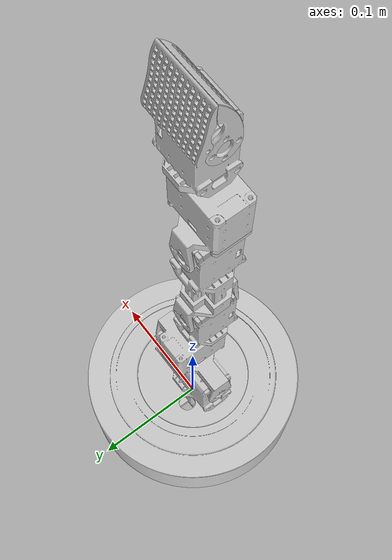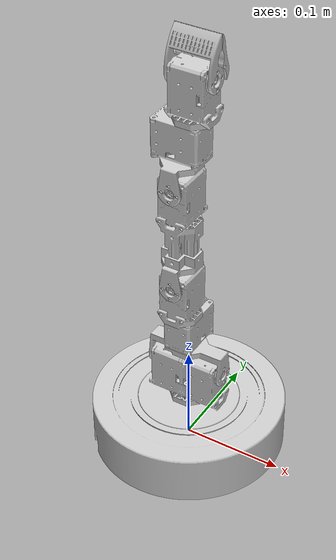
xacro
<?xml version="1.0" ?>
<robot name="clsrobo_90457" xmlns:xacro="http://www.ros.org/wiki/xacro">

    <xacro:include filename="$(find clsrobo_90457_description)/urdf/materials.xacro" />
    <xacro:include filename="$(find clsrobo_90457_description)/urdf/URDF.trans" />
    <xacro:include filename="$(find clsrobo_90457_description)/urdf/URDF.gazebo" />

    <!-->Link Tags Go Here<-->

<link name="0_link">
        <inertial>
            <origin rpy="0 0 0" xyz="0.00003821186809 -0.00030983086283 0.01875604321375"/>
            <mass value="2.07110000000000"/>
            <inertia ixx="3.64188928305714" ixy="0.00000514769757" ixz="0.00000085409818" iyy="3.64187376134656" iyz="0.00000286492593" izz="0.01059796903767"/>
        </inertial>
        <visual>
            <origin rpy="0 0 0" xyz="0 0 0"/>
            <geometry>
                <mesh filename="package://clsrobo_90457_description/meshes/0_link.stl" scale="0.001 0.001 0.001"/>
            </geometry>
            <material name="silver"/>
        </visual>
        <collision>
            <origin rpy="0 0 0" xyz="0 0 0"/>
            <geometry>
                <mesh filename="package://clsrobo_90457_description/meshes/0_link.stl" scale="0.001 0.001 0.001"/>
            </geometry>
        </collision>
    </link>

<link name="1_link">
        <inertial>
            <origin rpy="0 0 0" xyz="0.00012843477802 -0.00014275664176 0.02077775078681"/>
            <mass value="0.22750000000000"/>
            <inertia ixx="0.00019717203900" ixy="-0.00000059205455" ixz="0.00000047245861" iyy="0.00024035701003" iyz="-0.00000052463206" izz="0.00022140776924"/>
        </inertial>
        <visual>
            <origin rpy="0 0 0" xyz="0 0 0"/>
            <geometry>
                <mesh filename="package://clsrobo_90457_description/meshes/1_link.stl" scale="0.001 0.001 0.001"/>
            </geometry>
            <material name="silver"/>
        </visual>
        <collision>
            <origin rpy="0 0 0" xyz="0 0 0"/>
            <geometry>
                <mesh filename="package://clsrobo_90457_description/meshes/1_link.stl" scale="0.001 0.001 0.001"/>
            </geometry>
        </collision>
    </link>

<link name="2_link">
        <inertial>
            <origin rpy="0 0 0" xyz="0.00000000000000 0.00000000000000 0.04327280106237"/>
            <mass value="0.07003200000000"/>
            <inertia ixx="0.00001922677189" ixy="0.00000000789700" ixz="0.00000033247000" iyy="0.00003200377189" iyz="0.00000000906400" izz="0.00002148900000"/>
        </inertial>
        <visual>
            <origin rpy="0 0 0" xyz="0 0 0"/>
            <geometry>
                <mesh filename="package://clsrobo_90457_description/meshes/2_link.stl" scale="0.001 0.001 0.001"/>
            </geometry>
            <material name="silver"/>
        </visual>
        <collision>
            <origin rpy="0 0 0" xyz="0 0 0"/>
            <geometry>
                <mesh filename="package://clsrobo_90457_description/meshes/2_link.stl" scale="0.001 0.001 0.001"/>
            </geometry>
        </collision>
    </link>

<link name="3_link">
        <inertial>
            <origin rpy="0 0 0" xyz="0.00000000000000 0.00000000000000 0.02842285202155"/>
            <mass value="0.06198200000000"/>
            <inertia ixx="0.00001781079875" ixy="0.00000000881800" ixz="-0.00000006923300" iyy="0.00002019079875" iyz="-0.00000000773100" izz="0.00001068200000"/>
        </inertial>
        <visual>
            <origin rpy="0 0 0" xyz="0 0 0"/>
            <geometry>
                <mesh filename="package://clsrobo_90457_description/meshes/3_link.stl" scale="0.001 0.001 0.001"/>
            </geometry>
            <material name="silver"/>
        </visual>
        <collision>
            <origin rpy="0 0 0" xyz="0 0 0"/>
            <geometry>
                <mesh filename="package://clsrobo_90457_description/meshes/3_link.stl" scale="0.001 0.001 0.001"/>
            </geometry>
        </collision>
    </link>

<link name="4_link">
        <inertial>
            <origin rpy="0 0 0" xyz="0.00000000000000 0.00000000000000 0.07204928207526"/>
            <mass value="0.09625800000000"/>
            <inertia ixx="0.00009398436500" ixy="0.00000000881800" ixz="-0.00000006923300" iyy="0.00009756736500" iyz="-0.00000000773100" izz="0.00001666400000"/>
        </inertial>
        <visual>
            <origin rpy="0 0 0" xyz="0 0 0"/>
            <geometry>
                <mesh filename="package://clsrobo_90457_description/meshes/4_link.stl" scale="0.001 0.001 0.001"/>
            </geometry>
            <material name="silver"/>
        </visual>
        <collision>
            <origin rpy="0 0 0" xyz="0 0 0"/>
            <geometry>
                <mesh filename="package://clsrobo_90457_description/meshes/4_link.stl" scale="0.001 0.001 0.001"/>
            </geometry>
        </collision>
    </link>

<link name="5_link">
        <inertial>
            <origin rpy="0 0 0" xyz="0.00000000000000 0.00000000000000 0.04389676587057"/>
            <mass value="0.06808200000000"/>
            <inertia ixx="0.00001823124550" ixy="0.00000000789700" ixz="0.00000033247000" iyy="0.00002650824550" iyz="0.00000000906400" izz="0.00001691500000"/>
        </inertial>
        <visual>
            <origin rpy="0 0 0" xyz="0 0 0"/>
            <geometry>
                <mesh filename="package://clsrobo_90457_description/meshes/5_link.stl" scale="0.001 0.001 0.001"/>
            </geometry>
            <material name="silver"/>
        </visual>
        <collision>
            <origin rpy="0 0 0" xyz="0 0 0"/>
            <geometry>
                <mesh filename="package://clsrobo_90457_description/meshes/5_link.stl" scale="0.001 0.001 0.001"/>
            </geometry>
        </collision>
    </link>

<link name="6_link">
        <inertial>
            <origin rpy="0 0 0" xyz="0.00000000000000 0.00000000000000 0.02858005449096"/>
            <mass value="0.06705700000000"/>
            <inertia ixx="0.00001783103790" ixy="0.00000000881800" ixz="-0.00000006923300" iyy="0.00002021103790" iyz="-0.00000000773100" izz="0.00001068200000"/>
        </inertial>
        <visual>
            <origin rpy="0 0 0" xyz="0 0 0"/>
            <geometry>
                <mesh filename="package://clsrobo_90457_description/meshes/6_link.stl" scale="0.001 0.001 0.001"/>
            </geometry>
            <material name="silver"/>
        </visual>
        <collision>
            <origin rpy="0 0 0" xyz="0 0 0"/>
            <geometry>
                <mesh filename="package://clsrobo_90457_description/meshes/6_link.stl" scale="0.001 0.001 0.001"/>
            </geometry>
        </collision>
    </link>

<link name="7_link">
        <inertial>
            <origin rpy="0 0 0" xyz="0.00000000000000 0.00000000000000 0.01800000000000"/>
            <mass value="0.00716000000000"/>
            <inertia ixx="0.00000123800000" ixy="-0.00000000020200" ixz="-0.00000000016500" iyy="0.00000283900000" iyz="0.00000012121400" izz="0.00000187100000"/>
        </inertial>
        <visual>
            <origin rpy="0 0 0" xyz="0 0 0"/>
            <geometry>
                <mesh filename="package://clsrobo_90457_description/meshes/7_link.stl" scale="0.001 0.001 0.001"/>
            </geometry>
            <material name="silver"/>
        </visual>
        <collision>
            <origin rpy="0 0 0" xyz="0 0 0"/>
            <geometry>
                <mesh filename="package://clsrobo_90457_description/meshes/7_link.stl" scale="0.001 0.001 0.001"/>
            </geometry>
        </collision>
    </link>

    <!-->Joint Tags Go Here<-->

<joint name="joint_0" type="revolute">
        <origin rpy="0 0 0" xyz="0.00000000000000 0.00000000000000 0.04100000000000"/>
        <limit effort="1000.0" lower="-3.14" upper="3.14" velocity="1.0"/>
        <parent link="0_link"/>
        <child link="1_link"/>
        <axis xyz="0.00000000000000 0.00000000000000 1.00000000000000"/>
</joint>

<joint name="joint_1" type="revolute">
        <origin rpy="0 0 0" xyz="0.00000000000000 0.00000000000000 0.05098200000000"/>
        <limit effort="1000.0" lower="-1.57" upper="1.57" velocity="1.0"/>
        <parent link="1_link"/>
        <child link="2_link"/>
        <axis xyz="1.00000000000000 0.00000000000000 0.00000000000000"/>
</joint>

<joint name="joint_2" type="revolute">
        <origin rpy="0 0 0" xyz="-0.00000000000000 -0.01200000000000 0.06650000000000"/>
        <limit effort="1000.0" lower="-3.14" upper="3.14" velocity="1.0"/>
        <parent link="2_link"/>
        <child link="3_link"/>
        <axis xyz="0.00000000000000 0.00000000000000 1.00000000000000"/>
</joint>

<joint name="joint_3" type="revolute">
        <origin rpy="0 0 0" xyz="0.00000000000000 0.00000000000000 0.04175000000000"/>
        <limit effort="1000.0" lower="-1.57" upper="1.57" velocity="1.0"/>
        <parent link="3_link"/>
        <child link="4_link"/>
        <axis xyz="0.00000000000000 1.00000000000000 0.00000000000000"/>
</joint>

<joint name="joint_4" type="revolute">
        <origin rpy="0 0 0" xyz="0.00000000000000 0.00000000000000 0.10475000000000"/>
        <limit effort="1000.0" lower="-1.57" upper="1.57" velocity="1.0"/>
        <parent link="4_link"/>
        <child link="5_link"/>
        <axis xyz="0.00000000000000 1.00000000000000 0.00000000000000"/>
</joint>

<joint name="joint_5" type="revolute">
        <origin rpy="0 0 0" xyz="0.01200000000000 -0.00000000000000 0.06650000000000"/>
        <limit effort="1000.0" lower="-3.14" upper="3.14" velocity="1.0"/>
        <parent link="5_link"/>
        <child link="6_link"/>
        <axis xyz="0.00000000000000 0.00000000000000 1.00000000000000"/>
</joint>

<joint name="joint_6" type="revolute">
        <origin rpy="0 0 0" xyz="-0.00000000000000 0.00000000000000 0.04175000000000"/>
        <limit effort="1000.0" lower="-1.57" upper="0" velocity="1.0"/>
        <parent link="6_link"/>
        <child link="7_link"/>
        <axis xyz="-1.00000000000000 0.00000000000000 0.00000000000000"/>
</joint>

</robot>

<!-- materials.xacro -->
<robot name="clsrobo_90457" xmlns:xacro="http://www.ros.org/wiki/xacro" >

    <material name="silver">
        <color rgba="0.8 0.8 0.8 1.000"/>
    </material>

</robot>

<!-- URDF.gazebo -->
<robot name="clsrobo_90457" xmlns:xacro="http://www.ros.org/wiki/xacro" >

    <xacro:property name="body_color" value="Gazebo/Silver" />

<gazebo>
    <plugin filename="libgazebo_ros_control.so" name="control"/>
</gazebo>

<gazebo reference="0_link">
    <material>${body_color}</material>
    <mu1>0.2</mu1>
    <mu2>0.2</mu2>
    <selfCollide>true</selfCollide>
    <gravity>true</gravity>
</gazebo>

<gazebo reference="1_link">
        <material>Gazebo/Green</material>
        <mu1>0.2</mu1>
        <mu2>0.2</mu2>
        <selfCollide>true</selfCollide>
</gazebo>

<gazebo reference="2_link">
        <material>Gazebo/Green</material>
        <mu1>0.2</mu1>
        <mu2>0.2</mu2>
        <selfCollide>true</selfCollide>
</gazebo>

<gazebo reference="3_link">
        <material>Gazebo/Green</material>
        <mu1>0.2</mu1>
        <mu2>0.2</mu2>
        <selfCollide>true</selfCollide>
</gazebo>

<gazebo reference="4_link">
        <material>Gazebo/Green</material>
        <mu1>0.2</mu1>
        <mu2>0.2</mu2>
        <selfCollide>true</selfCollide>
</gazebo>

<gazebo reference="5_link">
        <material>Gazebo/Green</material>
        <mu1>0.2</mu1>
        <mu2>0.2</mu2>
        <selfCollide>true</selfCollide>
</gazebo>

<gazebo reference="6_link">
        <material>Gazebo/Green</material>
        <mu1>0.2</mu1>
        <mu2>0.2</mu2>
        <selfCollide>true</selfCollide>
</gazebo>

<gazebo reference="7_link">
        <material>Gazebo/Green</material>
        <mu1>0.2</mu1>
        <mu2>0.2</mu2>
        <selfCollide>true</selfCollide>
</gazebo>

</robot>
